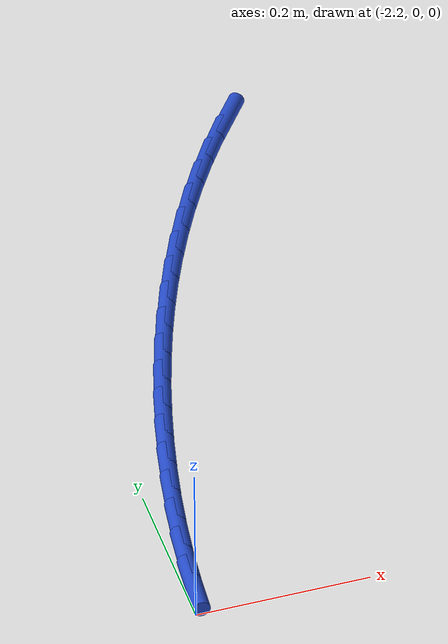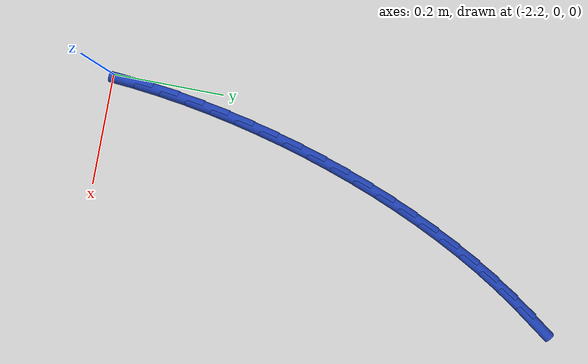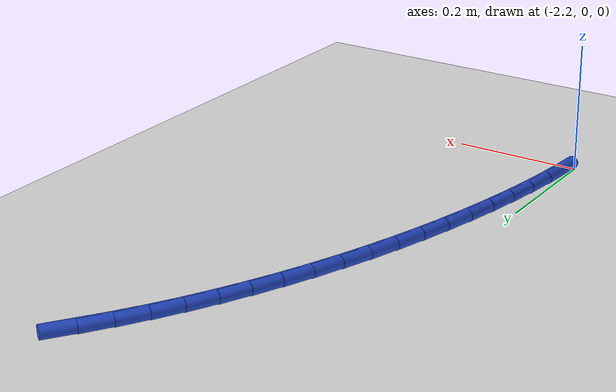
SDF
<sdf version="1.6">
 <world name="default">
  <model name="ground_plane">
   <static>1</static>
   <link name="link">
    <collision name="collision">
     <geometry><plane><normal>0 0 1</normal><size>100 100</size></plane></geometry>
     <surface><friction><ode><mu>100</mu><mu2>50</mu2></ode></friction></surface>
    </collision>
    <visual name="visual">
     <cast_shadows>0</cast_shadows>
     <geometry><plane><normal>0 0 1</normal><size>100 100</size></plane></geometry>
     <material>
      <script><uri>file://media/materials/scripts/gazebo.material</uri><name>Gazebo/WhiteGlow</name></script>
     </material>
    </visual>
   </link>
  </model>
  <model name="line">
   <link name="link_56">
    <pose>-1.9079883472098769 0.8232996173131154 0.01 0 1.57 0.9517704896321063</pose>
    <collision name="collision">
     <geometry><cylinder><radius>0.01</radius><length>0.08</length></cylinder></geometry>
    </collision>
    <visual name="visual">
     <material>
      <script><name>Gazebo/Blue</name><uri>file://media/materials/scripts/gazebo.material</uri></script>
     </material>
     <geometry><cylinder><radius>0.01</radius><length>0.08</length></cylinder></geometry>
    </visual>
   </link>
   <link name="link_57">
    <pose>-1.9349736972894702 0.7854222184728795 0.01 0 1.57 0.9920281874642862</pose>
    <collision name="collision">
     <geometry><cylinder><radius>0.01</radius><length>0.08</length></cylinder></geometry>
    </collision>
    <visual name="visual">
     <material>
      <script><name>Gazebo/Blue</name><uri>file://media/materials/scripts/gazebo.material</uri></script>
     </material>
     <geometry><cylinder><radius>0.01</radius><length>0.08</length></cylinder></geometry>
    </visual>
   </link>
   <link name="link_58">
    <pose>-1.9601778455525602 0.7468489218779945 0.01 0 1.57 1.0305651630379213</pose>
    <collision name="collision">
     <geometry><cylinder><radius>0.01</radius><length>0.08</length></cylinder></geometry>
    </collision>
    <visual name="visual">
     <material>
      <script><name>Gazebo/Blue</name><uri>file://media/materials/scripts/gazebo.material</uri></script>
     </material>
     <geometry><cylinder><radius>0.01</radius><length>0.08</length></cylinder></geometry>
    </visual>
   </link>
   <link name="link_59">
    <pose>-1.9837633911536936 0.7075228929778484 0.01 0 1.57 1.0669023086766773</pose>
    <collision name="collision">
     <geometry><cylinder><radius>0.01</radius><length>0.08</length></cylinder></geometry>
    </collision>
    <visual name="visual">
     <material>
      <script><name>Gazebo/Blue</name><uri>file://media/materials/scripts/gazebo.material</uri></script>
     </material>
     <geometry><cylinder><radius>0.01</radius><length>0.08</length></cylinder></geometry>
    </visual>
   </link>
   <link name="link_60">
    <pose>-2.0058929332474182 0.6673872972218282 0.01 0 1.57 1.1006311374016686</pose>
    <collision name="collision">
     <geometry><cylinder><radius>0.01</radius><length>0.08</length></cylinder></geometry>
    </collision>
    <visual name="visual">
     <material>
      <script><name>Gazebo/Blue</name><uri>file://media/materials/scripts/gazebo.material</uri></script>
     </material>
     <geometry><cylinder><radius>0.01</radius><length>0.08</length></cylinder></geometry>
    </visual>
   </link>
   <link name="link_61">
    <pose>-2.026729070988281 0.6263853000593211 0.01 0 1.57 1.1317554121376976</pose>
    <collision name="collision">
     <geometry><cylinder><radius>0.01</radius><length>0.08</length></cylinder></geometry>
    </collision>
    <visual name="visual">
     <material>
      <script><name>Gazebo/Blue</name><uri>file://media/materials/scripts/gazebo.material</uri></script>
     </material>
     <geometry><cylinder><radius>0.01</radius><length>0.08</length></cylinder></geometry>
    </visual>
   </link>
   <link name="link_62">
    <pose>-2.046407718862001 0.5844810117295631 0.01 0 1.57 1.161544671396139</pose>
    <collision name="collision">
     <geometry><cylinder><radius>0.01</radius><length>0.08</length></cylinder></geometry>
    </collision>
    <visual name="visual">
     <material>
      <script><name>Gazebo/Blue</name><uri>file://media/materials/scripts/gazebo.material</uri></script>
     </material>
     <geometry><cylinder><radius>0.01</radius><length>0.08</length></cylinder></geometry>
    </visual>
   </link>
   <link name="link_63">
    <pose>-2.0649518313613777 0.5417272047418132 0.01 0 1.57 1.1904522034044929</pose>
    <collision name="collision">
     <geometry><cylinder><radius>0.01</radius><length>0.08</length></cylinder></geometry>
    </collision>
    <visual name="visual">
     <material>
      <script><name>Gazebo/Blue</name><uri>file://media/materials/scripts/gazebo.material</uri></script>
     </material>
     <geometry><cylinder><radius>0.01</radius><length>0.08</length></cylinder></geometry>
    </visual>
   </link>
   <link name="link_64">
    <pose>-2.0823544780579373 0.4982001082725154 0.01 0 1.57 1.2185798499001455</pose>
    <collision name="collision">
     <geometry><cylinder><radius>0.01</radius><length>0.08</length></cylinder></geometry>
    </collision>
    <visual name="visual">
     <material>
      <script><name>Gazebo/Blue</name><uri>file://media/materials/scripts/gazebo.material</uri></script>
     </material>
     <geometry><cylinder><radius>0.01</radius><length>0.08</length></cylinder></geometry>
    </visual>
   </link>
   <link name="link_65">
    <pose>-2.0986087283330734 0.4539759516473518 0.01 0 1.57 1.246026530631225</pose>
    <collision name="collision">
     <geometry><cylinder><radius>0.01</radius><length>0.08</length></cylinder></geometry>
    </collision>
    <visual name="visual">
     <material>
      <script><name>Gazebo/Blue</name><uri>file://media/materials/scripts/gazebo.material</uri></script>
     </material>
     <geometry><cylinder><radius>0.01</radius><length>0.08</length></cylinder></geometry>
    </visual>
   </link>
   <link name="link_66">
    <pose>-2.1137076515681756 0.4091309641920046 0.01 0 1.57 1.2728884398216824</pose>
    <collision name="collision">
     <geometry><cylinder><radius>0.01</radius><length>0.08</length></cylinder></geometry>
    </collision>
    <visual name="visual">
     <material>
      <script><name>Gazebo/Blue</name><uri>file://media/materials/scripts/gazebo.material</uri></script>
     </material>
     <geometry><cylinder><radius>0.01</radius><length>0.08</length></cylinder></geometry>
    </visual>
   </link>
   <link name="link_67">
    <pose>-2.1276443171446364 0.3637413752321555 0.01 0 1.57 1.2992593527315281</pose>
    <collision name="collision">
     <geometry><cylinder><radius>0.01</radius><length>0.08</length></cylinder></geometry>
    </collision>
    <visual name="visual">
     <material>
      <script><name>Gazebo/Blue</name><uri>file://media/materials/scripts/gazebo.material</uri></script>
     </material>
     <geometry><cylinder><radius>0.01</radius><length>0.08</length></cylinder></geometry>
    </visual>
   </link>
   <link name="link_68">
    <pose>-2.140411794443847 0.31788341409348747 0.01 0 1.57 1.3252310185312075</pose>
    <collision name="collision">
     <geometry><cylinder><radius>0.01</radius><length>0.08</length></cylinder></geometry>
    </collision>
    <visual name="visual">
     <material>
      <script><name>Gazebo/Blue</name><uri>file://media/materials/scripts/gazebo.material</uri></script>
     </material>
     <geometry><cylinder><radius>0.01</radius><length>0.08</length></cylinder></geometry>
    </visual>
   </link>
   <link name="link_69">
    <pose>-2.1520031528471995 0.27163331010168223 0.01 0 1.57 1.3509429113099136</pose>
    <collision name="collision">
     <geometry><cylinder><radius>0.01</radius><length>0.08</length></cylinder></geometry>
    </collision>
    <visual name="visual">
     <material>
      <script><name>Gazebo/Blue</name><uri>file://media/materials/scripts/gazebo.material</uri></script>
     </material>
     <geometry><cylinder><radius>0.01</radius><length>0.08</length></cylinder></geometry>
    </visual>
   </link>
   <link name="link_70">
    <pose>-2.1624093125047112 0.22506612591006184 0.01 0 1.57 1.3771962187396718</pose>
    <collision name="collision">
     <geometry><cylinder><radius>0.01</radius><length>0.08</length></cylinder></geometry>
    </collision>
    <visual name="visual">
     <material>
      <script><name>Gazebo/Blue</name><uri>file://media/materials/scripts/gazebo.material</uri></script>
     </material>
     <geometry><cylinder><radius>0.01</radius><length>0.08</length></cylinder></geometry>
    </visual>
   </link>
   <link name="link_71">
    <pose>-2.1715898584196007 0.17823991443994347 0.01 0 1.57 1.4045970773944596</pose>
    <collision name="collision">
     <geometry><cylinder><radius>0.01</radius><length>0.08</length></cylinder></geometry>
    </collision>
    <visual name="visual">
     <material>
      <script><name>Gazebo/Blue</name><uri>file://media/materials/scripts/gazebo.material</uri></script>
     </material>
     <geometry><cylinder><radius>0.01</radius><length>0.08</length></cylinder></geometry>
    </visual>
   </link>
   <link name="link_72">
    <pose>-2.1794806682070234 0.1311998594749961 0.01 0 1.57 1.4332152109165468</pose>
    <collision name="collision">
     <geometry><cylinder><radius>0.01</radius><length>0.08</length></cylinder></geometry>
    </collision>
    <visual name="visual">
     <material>
      <script><name>Gazebo/Blue</name><uri>file://media/materials/scripts/gazebo.material</uri></script>
     </material>
     <geometry><cylinder><radius>0.01</radius><length>0.08</length></cylinder></geometry>
    </visual>
   </link>
   <link name="link_73">
    <pose>-2.1860170331126754 0.08399082649856345 0.01 0 1.57 1.4631040657558172</pose>
    <collision name="collision">
     <geometry><cylinder><radius>0.01</radius><length>0.08</length></cylinder></geometry>
    </collision>
    <visual name="visual">
     <material>
      <script><name>Gazebo/Blue</name><uri>file://media/materials/scripts/gazebo.material</uri></script>
     </material>
     <geometry><cylinder><radius>0.01</radius><length>0.08</length></cylinder></geometry>
    </visual>
   </link>
   <link name="link_74">
    <pose>-2.191134244382252 0.03665768099398966 0.01 0 1.57 1.4943129173240461</pose>
    <collision name="collision">
     <geometry><cylinder><radius>0.01</radius><length>0.08</length></cylinder></geometry>
    </collision>
    <visual name="visual">
     <material>
      <script><name>Gazebo/Blue</name><uri>file://media/materials/scripts/gazebo.material</uri></script>
     </material>
     <geometry><cylinder><radius>0.01</radius><length>0.08</length></cylinder></geometry>
    </visual>
   </link>
  </model>
 </world>
</sdf>
